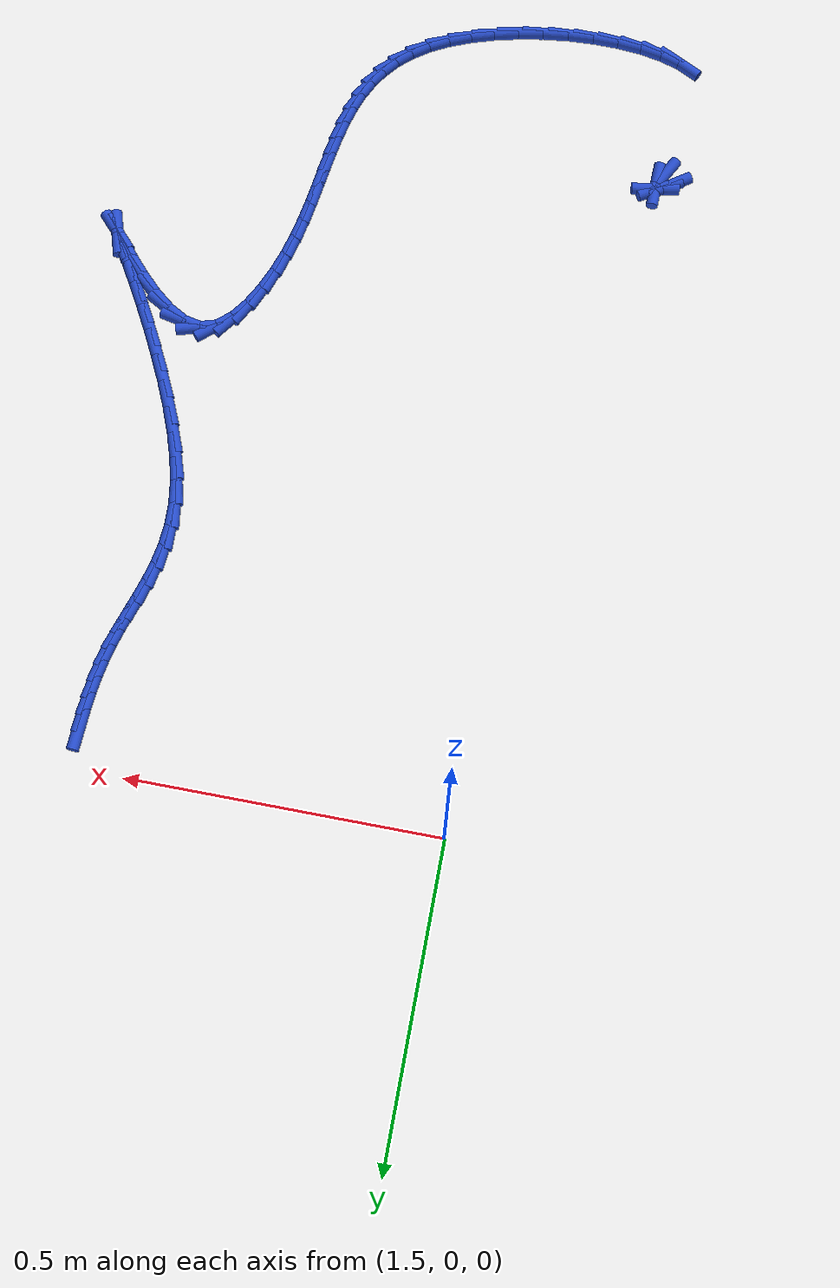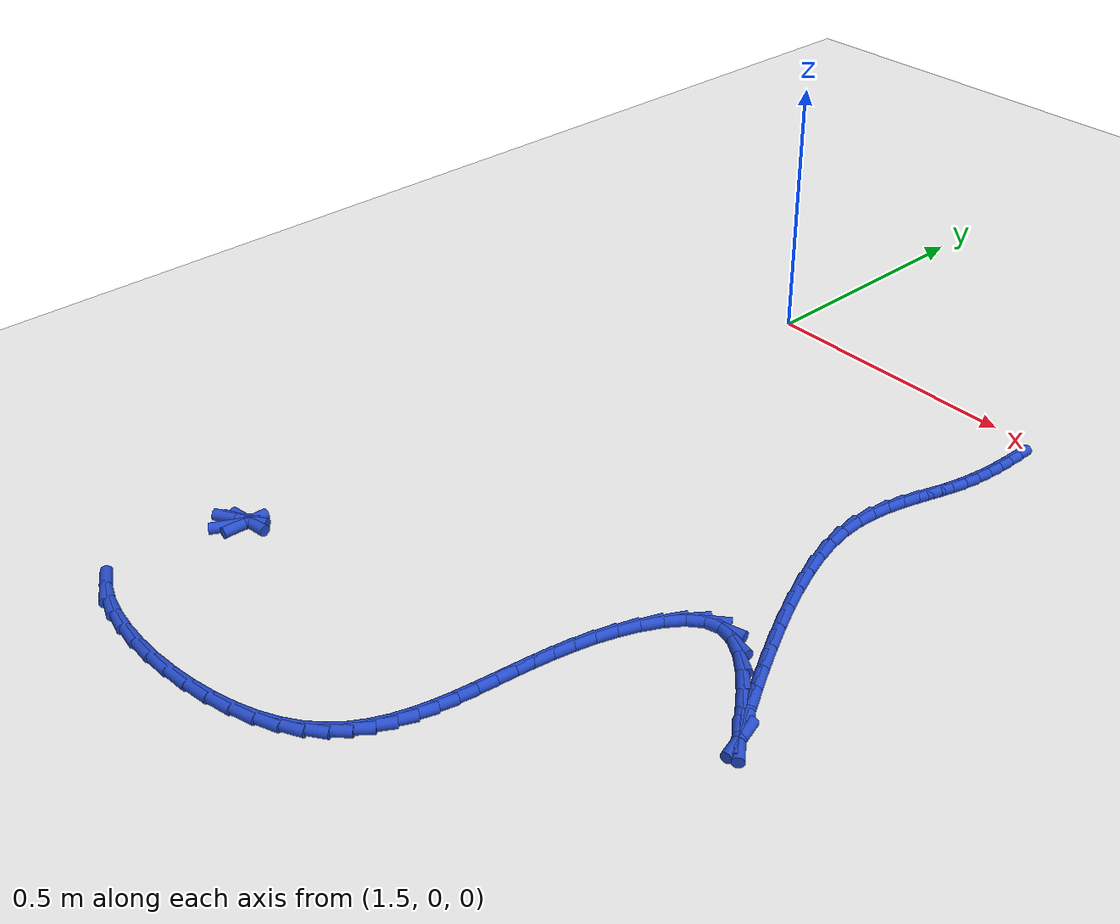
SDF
<sdf version="1.6">
 <world name="default">
  <model name="ground_plane">
   <static>1</static>
   <link name="link">
    <collision name="collision">
     <geometry><plane><normal>0 0 1</normal><size>100 100</size></plane></geometry>
     <surface><friction><ode><mu>100</mu><mu2>50</mu2></ode></friction></surface>
    </collision>
    <visual name="visual">
     <cast_shadows>0</cast_shadows>
     <geometry><plane><normal>0 0 1</normal><size>100 100</size></plane></geometry>
     <material>
      <script><uri>file://media/materials/scripts/gazebo.material</uri><name>Gazebo/WhiteGlow</name></script>
     </material>
    </visual>
   </link>
  </model>
  <model name="line">
   <link name="link_142">
    <pose>2.082042057107023 -0.06740725602073039 0.01 0 1.57 1.5261037725948328</pose>
    <collision name="collision">
     <geometry><cylinder><radius>0.01</radius><length>0.08</length></cylinder></geometry>
    </collision>
    <visual name="visual">
     <material>
      <script><name>Gazebo/Blue</name><uri>file://media/materials/scripts/gazebo.material</uri></script>
     </material>
     <geometry><cylinder><radius>0.01</radius><length>0.08</length></cylinder></geometry>
    </visual>
   </link>
   <link name="link_143">
    <pose>2.0808202230942126 -0.0947276994210439 0.01 0 1.57 1.4922674758748558</pose>
    <collision name="collision">
     <geometry><cylinder><radius>0.01</radius><length>0.08</length></cylinder></geometry>
    </collision>
    <visual name="visual">
     <material>
      <script><name>Gazebo/Blue</name><uri>file://media/materials/scripts/gazebo.material</uri></script>
     </material>
     <geometry><cylinder><radius>0.01</radius><length>0.08</length></cylinder></geometry>
    </visual>
   </link>
   <link name="link_144">
    <pose>2.078690937425729 -0.12178663250562005 0.01 0 1.57 1.4528218871081338</pose>
    <collision name="collision">
     <geometry><cylinder><radius>0.01</radius><length>0.08</length></cylinder></geometry>
    </collision>
    <visual name="visual">
     <material>
      <script><name>Gazebo/Blue</name><uri>file://media/materials/scripts/gazebo.material</uri></script>
     </material>
     <geometry><cylinder><radius>0.01</radius><length>0.08</length></cylinder></geometry>
    </visual>
   </link>
   <link name="link_145">
    <pose>2.0755038431945962 -0.1486763091425657 0.01 0 1.57 1.4083166838381764</pose>
    <collision name="collision">
     <geometry><cylinder><radius>0.01</radius><length>0.08</length></cylinder></geometry>
    </collision>
    <visual name="visual">
     <material>
      <script><name>Gazebo/Blue</name><uri>file://media/materials/scripts/gazebo.material</uri></script>
     </material>
     <geometry><cylinder><radius>0.01</radius><length>0.08</length></cylinder></geometry>
    </visual>
   </link>
   <link name="link_146">
    <pose>2.071108583493837 -0.17548898319998746 0.01 0 1.57 1.359526914561928</pose>
    <collision name="collision">
     <geometry><cylinder><radius>0.01</radius><length>0.08</length></cylinder></geometry>
    </collision>
    <visual name="visual">
     <material>
      <script><name>Gazebo/Blue</name><uri>file://media/materials/scripts/gazebo.material</uri></script>
     </material>
     <geometry><cylinder><radius>0.01</radius><length>0.08</length></cylinder></geometry>
    </visual>
   </link>
   <link name="link_147">
    <pose>2.065354801416475 -0.2023169085459923 0.01 0 1.57 1.3077399846793623</pose>
    <collision name="collision">
     <geometry><cylinder><radius>0.01</radius><length>0.08</length></cylinder></geometry>
    </collision>
    <visual name="visual">
     <material>
      <script><name>Gazebo/Blue</name><uri>file://media/materials/scripts/gazebo.material</uri></script>
     </material>
     <geometry><cylinder><radius>0.01</radius><length>0.08</length></cylinder></geometry>
    </visual>
   </link>
   <link name="link_148">
    <pose>2.0581005787972004 -0.22925455267619269 0.01 0 1.57 1.268214962048519</pose>
    <collision name="collision">
     <geometry><cylinder><radius>0.01</radius><length>0.08</length></cylinder></geometry>
    </collision>
    <visual name="visual">
     <material>
      <script><name>Gazebo/Blue</name><uri>file://media/materials/scripts/gazebo.material</uri></script>
     </material>
     <geometry><cylinder><radius>0.01</radius><length>0.08</length></cylinder></geometry>
    </visual>
   </link>
   <link name="link_149">
    <pose>2.0495957210626 -0.2564991389415206 0.01 0 1.57 1.2600891142640767</pose>
    <collision name="collision">
     <geometry><cylinder><radius>0.01</radius><length>0.08</length></cylinder></geometry>
    </collision>
    <visual name="visual">
     <material>
      <script><name>Gazebo/Blue</name><uri>file://media/materials/scripts/gazebo.material</uri></script>
     </material>
     <geometry><cylinder><radius>0.01</radius><length>0.08</length></cylinder></geometry>
    </visual>
   </link>
   <link name="link_150">
    <pose>2.0406391376868913 -0.28439193015655256 0.01 0 1.57 1.2825035908009952</pose>
    <collision name="collision">
     <geometry><cylinder><radius>0.01</radius><length>0.08</length></cylinder></geometry>
    </collision>
    <visual name="visual">
     <material>
      <script><name>Gazebo/Blue</name><uri>file://media/materials/scripts/gazebo.material</uri></script>
     </material>
     <geometry><cylinder><radius>0.01</radius><length>0.08</length></cylinder></geometry>
    </visual>
   </link>
   <link name="link_151">
    <pose>2.0320707827674087 -0.31328495584852056 0.01 0 1.57 1.3327111880119054</pose>
    <collision name="collision">
     <geometry><cylinder><radius>0.01</radius><length>0.08</length></cylinder></geometry>
    </collision>
    <visual name="visual">
     <material>
      <script><name>Gazebo/Blue</name><uri>file://media/materials/scripts/gazebo.material</uri></script>
     </material>
     <geometry><cylinder><radius>0.01</radius><length>0.08</length></cylinder></geometry>
    </visual>
   </link>
   <link name="link_152">
    <pose>2.024730610401484 -0.3435302455446555 0.01 0 1.57 1.4072589069920245</pose>
    <collision name="collision">
     <geometry><cylinder><radius>0.01</radius><length>0.08</length></cylinder></geometry>
    </collision>
    <visual name="visual">
     <material>
      <script><name>Gazebo/Blue</name><uri>file://media/materials/scripts/gazebo.material</uri></script>
     </material>
     <geometry><cylinder><radius>0.01</radius><length>0.08</length></cylinder></geometry>
    </visual>
   </link>
   <link name="link_153">
    <pose>2.0194585746864493 -0.3754798287721912 0.01 0 1.57 1.5013922626989897</pose>
    <collision name="collision">
     <geometry><cylinder><radius>0.01</radius><length>0.08</length></cylinder></geometry>
    </collision>
    <visual name="visual">
     <material>
      <script><name>Gazebo/Blue</name><uri>file://media/materials/scripts/gazebo.material</uri></script>
     </material>
     <geometry><cylinder><radius>0.01</radius><length>0.08</length></cylinder></geometry>
    </visual>
   </link>
   <link name="link_154">
    <pose>2.017094629719638 -0.40948573505835884 0.01 0 1.57 -1.5328047833558578</pose>
    <collision name="collision">
     <geometry><cylinder><radius>0.01</radius><length>0.08</length></cylinder></geometry>
    </collision>
    <visual name="visual">
     <material>
      <script><name>Gazebo/Blue</name><uri>file://media/materials/scripts/gazebo.material</uri></script>
     </material>
     <geometry><cylinder><radius>0.01</radius><length>0.08</length></cylinder></geometry>
    </visual>
   </link>
   <link name="link_155">
    <pose>2.0184787295983826 -0.4458999939303902 0.01 0 1.57 -1.4200220384680855</pose>
    <collision name="collision">
     <geometry><cylinder><radius>0.01</radius><length>0.08</length></cylinder></geometry>
    </collision>
    <visual name="visual">
     <material>
      <script><name>Gazebo/Blue</name><uri>file://media/materials/scripts/gazebo.material</uri></script>
     </material>
     <geometry><cylinder><radius>0.01</radius><length>0.08</length></cylinder></geometry>
    </visual>
   </link>
   <link name="link_156">
    <pose>2.024427854970473 -0.4850577091221188 0.01 0 1.57 -1.3219626725948517</pose>
    <collision name="collision">
     <geometry><cylinder><radius>0.01</radius><length>0.08</length></cylinder></geometry>
    </collision>
    <visual name="visual">
     <material>
      <script><name>Gazebo/Blue</name><uri>file://media/materials/scripts/gazebo.material</uri></script>
     </material>
     <geometry><cylinder><radius>0.01</radius><length>0.08</length></cylinder></geometry>
    </visual>
   </link>
   <link name="link_157">
    <pose>2.0350221446596315 -0.5267511128034783 0.01 0 1.57 -1.249350002177719</pose>
    <collision name="collision">
     <geometry><cylinder><radius>0.01</radius><length>0.08</length></cylinder></geometry>
    </collision>
    <visual name="visual">
     <material>
      <script><name>Gazebo/Blue</name><uri>file://media/materials/scripts/gazebo.material</uri></script>
     </material>
     <geometry><cylinder><radius>0.01</radius><length>0.08</length></cylinder></geometry>
    </visual>
   </link>
   <link name="link_158">
    <pose>2.049466252434433 -0.5701274195496693 0.01 0 1.57 -1.1945898555909424</pose>
    <collision name="collision">
     <geometry><cylinder><radius>0.01</radius><length>0.08</length></cylinder></geometry>
    </collision>
    <visual name="visual">
     <material>
      <script><name>Gazebo/Blue</name><uri>file://media/materials/scripts/gazebo.material</uri></script>
     </material>
     <geometry><cylinder><radius>0.01</radius><length>0.08</length></cylinder></geometry>
    </visual>
   </link>
   <link name="link_159">
    <pose>2.066913871346529 -0.6142962983960063 0.01 0 1.57 -1.1522374538185243</pose>
    <collision name="collision">
     <geometry><cylinder><radius>0.01</radius><length>0.08</length></cylinder></geometry>
    </collision>
    <visual name="visual">
     <material>
      <script><name>Gazebo/Blue</name><uri>file://media/materials/scripts/gazebo.material</uri></script>
     </material>
     <geometry><cylinder><radius>0.01</radius><length>0.08</length></cylinder></geometry>
    </visual>
   </link>
   <link name="link_160">
    <pose>2.0865186944475687 -0.6583674183778044 0.01 0 1.57 -1.1188363501053549</pose>
    <collision name="collision">
     <geometry><cylinder><radius>0.01</radius><length>0.08</length></cylinder></geometry>
    </collision>
    <visual name="visual">
     <material>
      <script><name>Gazebo/Blue</name><uri>file://media/materials/scripts/gazebo.material</uri></script>
     </material>
     <geometry><cylinder><radius>0.01</radius><length>0.08</length></cylinder></geometry>
    </visual>
   </link>
   <link name="link_161">
    <pose>2.107434414789202 -0.7014504485303784 0.01 0 1.57 -1.092157847730467</pose>
    <collision name="collision">
     <geometry><cylinder><radius>0.01</radius><length>0.08</length></cylinder></geometry>
    </collision>
    <visual name="visual">
     <material>
      <script><name>Gazebo/Blue</name><uri>file://media/materials/scripts/gazebo.material</uri></script>
     </material>
     <geometry><cylinder><radius>0.01</radius><length>0.08</length></cylinder></geometry>
    </visual>
   </link>
   <link name="link_162">
    <pose>2.1288147254230787 -0.7426550578890432 0.01 0 1.57 -1.070776504669452</pose>
    <collision name="collision">
     <geometry><cylinder><radius>0.01</radius><length>0.08</length></cylinder></geometry>
    </collision>
    <visual name="visual">
     <material>
      <script><name>Gazebo/Blue</name><uri>file://media/materials/scripts/gazebo.material</uri></script>
     </material>
     <geometry><cylinder><radius>0.01</radius><length>0.08</length></cylinder></geometry>
    </visual>
   </link>
   <link name="link_163">
    <pose>2.14981331940085 -0.7810909154891137 0.01 0 1.57 -1.0538612580114954</pose>
    <collision name="collision">
     <geometry><cylinder><radius>0.01</radius><length>0.08</length></cylinder></geometry>
    </collision>
    <visual name="visual">
     <material>
      <script><name>Gazebo/Blue</name><uri>file://media/materials/scripts/gazebo.material</uri></script>
     </material>
     <geometry><cylinder><radius>0.01</radius><length>0.08</length></cylinder></geometry>
    </visual>
   </link>
   <link name="link_164">
    <pose>2.1695838897741644 -0.8158676903659043 0.01 0 1.57 -1.0411531448291462</pose>
    <collision name="collision">
     <geometry><cylinder><radius>0.01</radius><length>0.08</length></cylinder></geometry>
    </collision>
    <visual name="visual">
     <material>
      <script><name>Gazebo/Blue</name><uri>file://media/materials/scripts/gazebo.material</uri></script>
     </material>
     <geometry><cylinder><radius>0.01</radius><length>0.08</length></cylinder></geometry>
    </visual>
   </link>
   <link name="link_165">
    <pose>2.1872801295946736 -0.8460950515547307 0.01 0 1.57 -1.033258215927851</pose>
    <collision name="collision">
     <geometry><cylinder><radius>0.01</radius><length>0.08</length></cylinder></geometry>
    </collision>
    <visual name="visual">
     <material>
      <script><name>Gazebo/Blue</name><uri>file://media/materials/scripts/gazebo.material</uri></script>
     </material>
     <geometry><cylinder><radius>0.01</radius><length>0.08</length></cylinder></geometry>
    </visual>
   </link>
   <link name="link_166">
    <pose>2.202055731914026 -0.8708826680909073 0.01 0 1.57 -1.0330048927801674</pose>
    <collision name="collision">
     <geometry><cylinder><radius>0.01</radius><length>0.08</length></cylinder></geometry>
    </collision>
    <visual name="visual">
     <material>
      <script><name>Gazebo/Blue</name><uri>file://media/materials/scripts/gazebo.material</uri></script>
     </material>
     <geometry><cylinder><radius>0.01</radius><length>0.08</length></cylinder></geometry>
    </visual>
   </link>
   <link name="link_167">
    <pose>2.213064389783873 -0.8893402090097491 0.01 0 1.57 -1.0533836080535093</pose>
    <collision name="collision">
     <geometry><cylinder><radius>0.01</radius><length>0.08</length></cylinder></geometry>
    </collision>
    <visual name="visual">
     <material>
      <script><name>Gazebo/Blue</name><uri>file://media/materials/scripts/gazebo.material</uri></script>
     </material>
     <geometry><cylinder><radius>0.01</radius><length>0.08</length></cylinder></geometry>
    </visual>
   </link>
   <link name="link_168">
    <pose>2.2194597962558635 -0.9005773433465706 0.01 0 1.57 -1.2799473453714694</pose>
    <collision name="collision">
     <geometry><cylinder><radius>0.01</radius><length>0.08</length></cylinder></geometry>
    </collision>
    <visual name="visual">
     <material>
      <script><name>Gazebo/Blue</name><uri>file://media/materials/scripts/gazebo.material</uri></script>
     </material>
     <geometry><cylinder><radius>0.01</radius><length>0.08</length></cylinder></geometry>
    </visual>
   </link>
   <link name="link_169">
    <pose>2.220395644381649 -0.9037037401366874 0.01 0 1.57 -0.8302474383155294</pose>
    <collision name="collision">
     <geometry><cylinder><radius>0.01</radius><length>0.08</length></cylinder></geometry>
    </collision>
    <visual name="visual">
     <material>
      <script><name>Gazebo/Blue</name><uri>file://media/materials/scripts/gazebo.material</uri></script>
     </material>
     <geometry><cylinder><radius>0.01</radius><length>0.08</length></cylinder></geometry>
    </visual>
   </link>
   <link name="link_170">
    <pose>2.215025627212877 -0.8978290684154138 0.01 0 1.57 -0.896679828604675</pose>
    <collision name="collision">
     <geometry><cylinder><radius>0.01</radius><length>0.08</length></cylinder></geometry>
    </collision>
    <visual name="visual">
     <material>
      <script><name>Gazebo/Blue</name><uri>file://media/materials/scripts/gazebo.material</uri></script>
     </material>
     <geometry><cylinder><radius>0.01</radius><length>0.08</length></cylinder></geometry>
    </visual>
   </link>
   <link name="link_171">
    <pose>2.202635008175134 -0.8823209524294088 0.01 0 1.57 -0.8885887891621492</pose>
    <collision name="collision">
     <geometry><cylinder><radius>0.01</radius><length>0.08</length></cylinder></geometry>
    </collision>
    <visual name="visual">
     <material>
      <script><name>Gazebo/Blue</name><uri>file://media/materials/scripts/gazebo.material</uri></script>
     </material>
     <geometry><cylinder><radius>0.01</radius><length>0.08</length></cylinder></geometry>
    </visual>
   </link>
   <link name="link_172">
    <pose>2.1838770401541927 -0.8592290792618905 0.01 0 1.57 -0.8518618276449166</pose>
    <collision name="collision">
     <geometry><cylinder><radius>0.01</radius><length>0.08</length></cylinder></geometry>
    </collision>
    <visual name="visual">
     <material>
      <script><name>Gazebo/Blue</name><uri>file://media/materials/scripts/gazebo.material</uri></script>
     </material>
     <geometry><cylinder><radius>0.01</radius><length>0.08</length></cylinder></geometry>
    </visual>
   </link>
   <link name="link_173">
    <pose>2.160216455459261 -0.8321941122919849 0.01 0 1.57 -0.7896016104357316</pose>
    <collision name="collision">
     <geometry><cylinder><radius>0.01</radius><length>0.08</length></cylinder></geometry>
    </collision>
    <visual name="visual">
     <material>
      <script><name>Gazebo/Blue</name><uri>file://media/materials/scripts/gazebo.material</uri></script>
     </material>
     <geometry><cylinder><radius>0.01</radius><length>0.08</length></cylinder></geometry>
    </visual>
   </link>
   <link name="link_174">
    <pose>2.1331286479857514 -0.8048776178699134 0.01 0 1.57 -0.6893645931479201</pose>
    <collision name="collision">
     <geometry><cylinder><radius>0.01</radius><length>0.08</length></cylinder></geometry>
    </collision>
    <visual name="visual">
     <material>
      <script><name>Gazebo/Blue</name><uri>file://media/materials/scripts/gazebo.material</uri></script>
     </material>
     <geometry><cylinder><radius>0.01</radius><length>0.08</length></cylinder></geometry>
    </visual>
   </link>
   <link name="link_175">
    <pose>2.1040890116290756 -0.7809411623458967 0.01 0 1.57 -0.5198743141561598</pose>
    <collision name="collision">
     <geometry><cylinder><radius>0.01</radius><length>0.08</length></cylinder></geometry>
    </collision>
    <visual name="visual">
     <material>
      <script><name>Gazebo/Blue</name><uri>file://media/materials/scripts/gazebo.material</uri></script>
     </material>
     <geometry><cylinder><radius>0.01</radius><length>0.08</length></cylinder></geometry>
    </visual>
   </link>
   <link name="link_176">
    <pose>2.0745729402846473 -0.7640463120701563 0.01 0 1.57 -0.21380305512474237</pose>
    <collision name="collision">
     <geometry><cylinder><radius>0.01</radius><length>0.08</length></cylinder></geometry>
    </collision>
    <visual name="visual">
     <material>
      <script><name>Gazebo/Blue</name><uri>file://media/materials/scripts/gazebo.material</uri></script>
     </material>
     <geometry><cylinder><radius>0.01</radius><length>0.08</length></cylinder></geometry>
    </visual>
   </link>
   <link name="link_177">
    <pose>2.046055827847879 -0.7578546333929134 0.01 0 1.57 0.2813499555942095</pose>
    <collision name="collision">
     <geometry><cylinder><radius>0.01</radius><length>0.08</length></cylinder></geometry>
    </collision>
    <visual name="visual">
     <material>
      <script><name>Gazebo/Blue</name><uri>file://media/materials/scripts/gazebo.material</uri></script>
     </material>
     <geometry><cylinder><radius>0.01</radius><length>0.08</length></cylinder></geometry>
    </visual>
   </link>
   <link name="link_178">
    <pose>2.01990045567523 -0.7654139668409327 0.01 0 1.57 0.7024356345212175</pose>
    <collision name="collision">
     <geometry><cylinder><radius>0.01</radius><length>0.08</length></cylinder></geometry>
    </collision>
    <visual name="visual">
     <material>
      <script><name>Gazebo/Blue</name><uri>file://media/materials/scripts/gazebo.material</uri></script>
     </material>
     <geometry><cylinder><radius>0.01</radius><length>0.08</length></cylinder></geometry>
    </visual>
   </link>
   <link name="link_179">
    <pose>1.9966165145763761 -0.7851229042590127 0.01 0 1.57 0.9458082224770127</pose>
    <collision name="collision">
     <geometry><cylinder><radius>0.01</radius><length>0.08</length></cylinder></geometry>
    </collision>
    <visual name="visual">
     <material>
      <script><name>Gazebo/Blue</name><uri>file://media/materials/scripts/gazebo.material</uri></script>
     </material>
     <geometry><cylinder><radius>0.01</radius><length>0.08</length></cylinder></geometry>
    </visual>
   </link>
   <link name="link_180">
    <pose>1.9763230386395296 -0.8132510017709199 0.01 0 1.57 1.0882343953147915</pose>
    <collision name="collision">
     <geometry><cylinder><radius>0.01</radius><length>0.08</length></cylinder></geometry>
    </collision>
    <visual name="visual">
     <material>
      <script><name>Gazebo/Blue</name><uri>file://media/materials/scripts/gazebo.material</uri></script>
     </material>
     <geometry><cylinder><radius>0.01</radius><length>0.08</length></cylinder></geometry>
    </visual>
   </link>
   <link name="link_181">
    <pose>1.9591370342284793 -0.8460567646276378 0.01 0 1.57 1.1806609768895815</pose>
    <collision name="collision">
     <geometry><cylinder><radius>0.01</radius><length>0.08</length></cylinder></geometry>
    </collision>
    <visual name="visual">
     <material>
      <script><name>Gazebo/Blue</name><uri>file://media/materials/scripts/gazebo.material</uri></script>
     </material>
     <geometry><cylinder><radius>0.01</radius><length>0.08</length></cylinder></geometry>
    </visual>
   </link>
   <link name="link_182">
    <pose>1.9451152780360728 -0.8801552763532626 0.01 0 1.57 1.2555650972127754</pose>
    <collision name="collision">
     <geometry><cylinder><radius>0.01</radius><length>0.08</length></cylinder></geometry>
    </collision>
    <visual name="visual">
     <material>
      <script><name>Gazebo/Blue</name><uri>file://media/materials/scripts/gazebo.material</uri></script>
     </material>
     <geometry><cylinder><radius>0.01</radius><length>0.08</length></cylinder></geometry>
    </visual>
   </link>
   <link name="link_183">
    <pose>1.9339241776442029 -0.9144727262988971 0.01 0 1.57 1.318885832123612</pose>
    <collision name="collision">
     <geometry><cylinder><radius>0.01</radius><length>0.08</length></cylinder></geometry>
    </collision>
    <visual name="visual">
     <material>
      <script><name>Gazebo/Blue</name><uri>file://media/materials/scripts/gazebo.material</uri></script>
     </material>
     <geometry><cylinder><radius>0.01</radius><length>0.08</length></cylinder></geometry>
    </visual>
   </link>
   <link name="link_184">
    <pose>1.9250745216277743 -0.9488566164496087 0.01 0 1.57 1.3695413120740745</pose>
    <collision name="collision">
     <geometry><cylinder><radius>0.01</radius><length>0.08</length></cylinder></geometry>
    </collision>
    <visual name="visual">
     <material>
      <script><name>Gazebo/Blue</name><uri>file://media/materials/scripts/gazebo.material</uri></script>
     </material>
     <geometry><cylinder><radius>0.01</radius><length>0.08</length></cylinder></geometry>
    </visual>
   </link>
   <link name="link_185">
    <pose>1.9180766953989457 -0.9831568356385697 0.01 0 1.57 1.406851123499042</pose>
    <collision name="collision">
     <geometry><cylinder><radius>0.01</radius><length>0.08</length></cylinder></geometry>
    </collision>
    <visual name="visual">
     <material>
      <script><name>Gazebo/Blue</name><uri>file://media/materials/scripts/gazebo.material</uri></script>
     </material>
     <geometry><cylinder><radius>0.01</radius><length>0.08</length></cylinder></geometry>
    </visual>
   </link>
   <link name="link_186">
    <pose>1.9124410843698785 -1.017223272698949 0.01 0 1.57 1.4303188675015832</pose>
    <collision name="collision">
     <geometry><cylinder><radius>0.01</radius><length>0.08</length></cylinder></geometry>
    </collision>
    <visual name="visual">
     <material>
      <script><name>Gazebo/Blue</name><uri>file://media/materials/scripts/gazebo.material</uri></script>
     </material>
     <geometry><cylinder><radius>0.01</radius><length>0.08</length></cylinder></geometry>
    </visual>
   </link>
   <link name="link_187">
    <pose>1.9076780739527317 -1.0509058164639171 0.01 0 1.57 1.4394240957260716</pose>
    <collision name="collision">
     <geometry><cylinder><radius>0.01</radius><length>0.08</length></cylinder></geometry>
    </collision>
    <visual name="visual">
     <material>
      <script><name>Gazebo/Blue</name><uri>file://media/materials/scripts/gazebo.material</uri></script>
     </material>
     <geometry><cylinder><radius>0.01</radius><length>0.08</length></cylinder></geometry>
    </visual>
   </link>
   <link name="link_188">
    <pose>1.9032980495596636 -1.0840543557666438 0.01 0 1.57 1.4334641142484865</pose>
    <collision name="collision">
     <geometry><cylinder><radius>0.01</radius><length>0.08</length></cylinder></geometry>
    </collision>
    <visual name="visual">
     <material>
      <script><name>Gazebo/Blue</name><uri>file://media/materials/scripts/gazebo.material</uri></script>
     </material>
     <geometry><cylinder><radius>0.01</radius><length>0.08</length></cylinder></geometry>
    </visual>
   </link>
   <link name="link_189">
    <pose>1.8988113966028357 -1.1165187794402993 0.01 0 1.57 1.4114609705490606</pose>
    <collision name="collision">
     <geometry><cylinder><radius>0.01</radius><length>0.08</length></cylinder></geometry>
    </collision>
    <visual name="visual">
     <material>
      <script><name>Gazebo/Blue</name><uri>file://media/materials/scripts/gazebo.material</uri></script>
     </material>
     <geometry><cylinder><radius>0.01</radius><length>0.08</length></cylinder></geometry>
    </visual>
   </link>
   <link name="link_190">
    <pose>1.8937285004944062 -1.1481489763180535 0.01 0 1.57 1.3721591568714502</pose>
    <collision name="collision">
     <geometry><cylinder><radius>0.01</radius><length>0.08</length></cylinder></geometry>
    </collision>
    <visual name="visual">
     <material>
      <script><name>Gazebo/Blue</name><uri>file://media/materials/scripts/gazebo.material</uri></script>
     </material>
     <geometry><cylinder><radius>0.01</radius><length>0.08</length></cylinder></geometry>
    </visual>
   </link>
   <link name="link_191">
    <pose>1.887559746646536 -1.178794835233077 0.01 0 1.57 1.3141678490127973</pose>
    <collision name="collision">
     <geometry><cylinder><radius>0.01</radius><length>0.08</length></cylinder></geometry>
    </collision>
    <visual name="visual">
     <material>
      <script><name>Gazebo/Blue</name><uri>file://media/materials/scripts/gazebo.material</uri></script>
     </material>
     <geometry><cylinder><radius>0.01</radius><length>0.08</length></cylinder></geometry>
    </visual>
   </link>
   <link name="link_192">
    <pose>1.8798155204713825 -1.2083062450185393 0.01 0 1.57 1.2363351484372713</pose>
    <collision name="collision">
     <geometry><cylinder><radius>0.01</radius><length>0.08</length></cylinder></geometry>
    </collision>
    <visual name="visual">
     <material>
      <script><name>Gazebo/Blue</name><uri>file://media/materials/scripts/gazebo.material</uri></script>
     </material>
     <geometry><cylinder><radius>0.01</radius><length>0.08</length></cylinder></geometry>
    </visual>
   </link>
   <link name="link_193">
    <pose>1.8700062073811077 -1.2365330945076114 0.01 0 1.57 1.1384379697158895</pose>
    <collision name="collision">
     <geometry><cylinder><radius>0.01</radius><length>0.08</length></cylinder></geometry>
    </collision>
    <visual name="visual">
     <material>
      <script><name>Gazebo/Blue</name><uri>file://media/materials/scripts/gazebo.material</uri></script>
     </material>
     <geometry><cylinder><radius>0.01</radius><length>0.08</length></cylinder></geometry>
    </visual>
   </link>
   <link name="link_194">
    <pose>1.85764219278787 -1.2633252725334627 0.01 0 1.57 1.0221368469474807</pose>
    <collision name="collision">
     <geometry><cylinder><radius>0.01</radius><length>0.08</length></cylinder></geometry>
    </collision>
    <visual name="visual">
     <material>
      <script><name>Gazebo/Blue</name><uri>file://media/materials/scripts/gazebo.material</uri></script>
     </material>
     <geometry><cylinder><radius>0.01</radius><length>0.08</length></cylinder></geometry>
    </visual>
   </link>
   <link name="link_195">
    <pose>1.8422338621038283 -1.288532667929263 0.01 0 1.57 0.891802866262923</pose>
    <collision name="collision">
     <geometry><cylinder><radius>0.01</radius><length>0.08</length></cylinder></geometry>
    </collision>
    <visual name="visual">
     <material>
      <script><name>Gazebo/Blue</name><uri>file://media/materials/scripts/gazebo.material</uri></script>
     </material>
     <geometry><cylinder><radius>0.01</radius><length>0.08</length></cylinder></geometry>
    </visual>
   </link>
   <link name="link_196">
    <pose>1.8232916007411437 -1.3120051695281836 0.01 0 1.57 0.7544718247849503</pose>
    <collision name="collision">
     <geometry><cylinder><radius>0.01</radius><length>0.08</length></cylinder></geometry>
    </collision>
    <visual name="visual">
     <material>
      <script><name>Gazebo/Blue</name><uri>file://media/materials/scripts/gazebo.material</uri></script>
     </material>
     <geometry><cylinder><radius>0.01</radius><length>0.08</length></cylinder></geometry>
    </visual>
   </link>
   <link name="link_197">
    <pose>1.8003257941119752 -1.3335926661633937 0.01 0 1.57 0.6184289358359839</pose>
    <collision name="collision">
     <geometry><cylinder><radius>0.01</radius><length>0.08</length></cylinder></geometry>
    </collision>
    <visual name="visual">
     <material>
      <script><name>Gazebo/Blue</name><uri>file://media/materials/scripts/gazebo.material</uri></script>
     </material>
     <geometry><cylinder><radius>0.01</radius><length>0.08</length></cylinder></geometry>
    </visual>
   </link>
   <link name="link_198">
    <pose>1.7728468276284817 -1.3531450466680632 0.01 0 1.57 0.49333307470357585</pose>
    <collision name="collision">
     <geometry><cylinder><radius>0.01</radius><length>0.08</length></cylinder></geometry>
    </collision>
    <visual name="visual">
     <material>
      <script><name>Gazebo/Blue</name><uri>file://media/materials/scripts/gazebo.material</uri></script>
     </material>
     <geometry><cylinder><radius>0.01</radius><length>0.08</length></cylinder></geometry>
    </visual>
   </link>
   <link name="link_199">
    <pose>1.7405377113349232 -1.370516919646059 0.01 0 1.57 0.39141947383310477</pose>
    <collision name="collision">
     <geometry><cylinder><radius>0.01</radius><length>0.08</length></cylinder></geometry>
    </collision>
    <visual name="visual">
     <material>
      <script><name>Gazebo/Blue</name><uri>file://media/materials/scripts/gazebo.material</uri></script>
     </material>
     <geometry><cylinder><radius>0.01</radius><length>0.08</length></cylinder></geometry>
    </visual>
   </link>
   <link name="link_200">
    <pose>1.7040194991049111 -1.385588540978368 0.01 0 1.57 0.30805533851668754</pose>
    <collision name="collision">
     <geometry><cylinder><radius>0.01</radius><length>0.08</length></cylinder></geometry>
    </collision>
    <visual name="visual">
     <material>
      <script><name>Gazebo/Blue</name><uri>file://media/materials/scripts/gazebo.material</uri></script>
     </material>
     <geometry><cylinder><radius>0.01</radius><length>0.08</length></cylinder></geometry>
    </visual>
   </link>
   <link name="link_201">
    <pose>1.664230350734171 -1.398248836613628 0.01 0 1.57 0.2361891436815011</pose>
    <collision name="collision">
     <geometry><cylinder><radius>0.01</radius><length>0.08</length></cylinder></geometry>
    </collision>
    <visual name="visual">
     <material>
      <script><name>Gazebo/Blue</name><uri>file://media/materials/scripts/gazebo.material</uri></script>
     </material>
     <geometry><cylinder><radius>0.01</radius><length>0.08</length></cylinder></geometry>
    </visual>
   </link>
   <link name="link_202">
    <pose>1.6221086750744143 -1.4083867393099792 0.01 0 1.57 0.17077358256000705</pose>
    <collision name="collision">
     <geometry><cylinder><radius>0.01</radius><length>0.08</length></cylinder></geometry>
    </collision>
    <visual name="visual">
     <material>
      <script><name>Gazebo/Blue</name><uri>file://media/materials/scripts/gazebo.material</uri></script>
     </material>
     <geometry><cylinder><radius>0.01</radius><length>0.08</length></cylinder></geometry>
    </visual>
   </link>
   <link name="link_203">
    <pose>1.578592880977354 -1.4158911818255573 0.01 0 1.57 0.10783011735097468</pose>
    <collision name="collision">
     <geometry><cylinder><radius>0.01</radius><length>0.08</length></cylinder></geometry>
    </collision>
    <visual name="visual">
     <material>
      <script><name>Gazebo/Blue</name><uri>file://media/materials/scripts/gazebo.material</uri></script>
     </material>
     <geometry><cylinder><radius>0.01</radius><length>0.08</length></cylinder></geometry>
    </visual>
   </link>
   <link name="link_204">
    <pose>1.5346213772947044 -1.4206510969185004 0.01 0 1.57 0.04376079551888896</pose>
    <collision name="collision">
     <geometry><cylinder><radius>0.01</radius><length>0.08</length></cylinder></geometry>
    </collision>
    <visual name="visual">
     <material>
      <script><name>Gazebo/Blue</name><uri>file://media/materials/scripts/gazebo.material</uri></script>
     </material>
     <geometry><cylinder><radius>0.01</radius><length>0.08</length></cylinder></geometry>
    </visual>
   </link>
   <link name="link_205">
    <pose>1.491132572878178 -1.4225554173469457 0.01 0 1.57 -0.02524777517808241</pose>
    <collision name="collision">
     <geometry><cylinder><radius>0.01</radius><length>0.08</length></cylinder></geometry>
    </collision>
    <visual name="visual">
     <material>
      <script><name>Gazebo/Blue</name><uri>file://media/materials/scripts/gazebo.material</uri></script>
     </material>
     <geometry><cylinder><radius>0.01</radius><length>0.08</length></cylinder></geometry>
    </visual>
   </link>
   <link name="link_206">
    <pose>1.4490648765794885 -1.4214930758690312 0.01 0 1.57 -0.10388705892647077</pose>
    <collision name="collision">
     <geometry><cylinder><radius>0.01</radius><length>0.08</length></cylinder></geometry>
    </collision>
    <visual name="visual">
     <material>
      <script><name>Gazebo/Blue</name><uri>file://media/materials/scripts/gazebo.material</uri></script>
     </material>
     <geometry><cylinder><radius>0.01</radius><length>0.08</length></cylinder></geometry>
    </visual>
   </link>
   <link name="link_207">
    <pose>1.4093566972503482 -1.4173530052428944 0.01 0 1.57 -0.19863160002152547</pose>
    <collision name="collision">
     <geometry><cylinder><radius>0.01</radius><length>0.08</length></cylinder></geometry>
    </collision>
    <visual name="visual">
     <material>
      <script><name>Gazebo/Blue</name><uri>file://media/materials/scripts/gazebo.material</uri></script>
     </material>
     <geometry><cylinder><radius>0.01</radius><length>0.08</length></cylinder></geometry>
    </visual>
   </link>
   <link name="link_208">
    <pose>1.3729464437424714 -1.4100241382266727 0.01 0 1.57 -0.31906530110028747</pose>
    <collision name="collision">
     <geometry><cylinder><radius>0.01</radius><length>0.08</length></cylinder></geometry>
    </collision>
    <visual name="visual">
     <material>
      <script><name>Gazebo/Blue</name><uri>file://media/materials/scripts/gazebo.material</uri></script>
     </material>
     <geometry><cylinder><radius>0.01</radius><length>0.08</length></cylinder></geometry>
    </visual>
   </link>
   <link name="link_209">
    <pose>1.34077252490757 -1.3993954075785033 0.01 0 1.57 -0.4795219264298293</pose>
    <collision name="collision">
     <geometry><cylinder><radius>0.01</radius><length>0.08</length></cylinder></geometry>
    </collision>
    <visual name="visual">
     <material>
      <script><name>Gazebo/Blue</name><uri>file://media/materials/scripts/gazebo.material</uri></script>
     </material>
     <geometry><cylinder><radius>0.01</radius><length>0.08</length></cylinder></geometry>
    </visual>
   </link>
   <link name="link_218">
    <pose>1.3377257806592944 -1.1738510058452112 0.01 0 1.57 1.08339972408302</pose>
    <collision name="collision">
     <geometry><cylinder><radius>0.01</radius><length>0.08</length></cylinder></geometry>
    </collision>
    <visual name="visual">
     <material>
      <script><name>Gazebo/Blue</name><uri>file://media/materials/scripts/gazebo.material</uri></script>
     </material>
     <geometry><cylinder><radius>0.01</radius><length>0.08</length></cylinder></geometry>
    </visual>
   </link>
   <link name="link_219">
    <pose>1.3464767692280506 -1.1573412238426461 0.01 0 1.57 1.5348928173307224</pose>
    <collision name="collision">
     <geometry><cylinder><radius>0.01</radius><length>0.08</length></cylinder></geometry>
    </collision>
    <visual name="visual">
     <material>
      <script><name>Gazebo/Blue</name><uri>file://media/materials/scripts/gazebo.material</uri></script>
     </material>
     <geometry><cylinder><radius>0.01</radius><length>0.08</length></cylinder></geometry>
    </visual>
   </link>
   <link name="link_220">
    <pose>1.3467308404171832 -1.150267764663624 0.01 0 1.57 0.17091856419903137</pose>
    <collision name="collision">
     <geometry><cylinder><radius>0.01</radius><length>0.08</length></cylinder></geometry>
    </collision>
    <visual name="visual">
     <material>
      <script><name>Gazebo/Blue</name><uri>file://media/materials/scripts/gazebo.material</uri></script>
     </material>
     <geometry><cylinder><radius>0.01</radius><length>0.08</length></cylinder></geometry>
    </visual>
   </link>
   <link name="link_221">
    <pose>1.3390912943411013 -1.1515863701962554 0.01 0 1.57 0.5228709891139647</pose>
    <collision name="collision">
     <geometry><cylinder><radius>0.01</radius><length>0.08</length></cylinder></geometry>
    </collision>
    <visual name="visual">
     <material>
      <script><name>Gazebo/Blue</name><uri>file://media/materials/scripts/gazebo.material</uri></script>
     </material>
     <geometry><cylinder><radius>0.01</radius><length>0.08</length></cylinder></geometry>
    </visual>
   </link>
   <link name="link_222">
    <pose>1.3243614675079347 -1.16007635212592 0.01 0 1.57 0.6020171836157705</pose>
    <collision name="collision">
     <geometry><cylinder><radius>0.01</radius><length>0.08</length></cylinder></geometry>
    </collision>
    <visual name="visual">
     <material>
      <script><name>Gazebo/Blue</name><uri>file://media/materials/scripts/gazebo.material</uri></script>
     </material>
     <geometry><cylinder><radius>0.01</radius><length>0.08</length></cylinder></geometry>
    </visual>
   </link>
  </model>
 </world>
</sdf>
